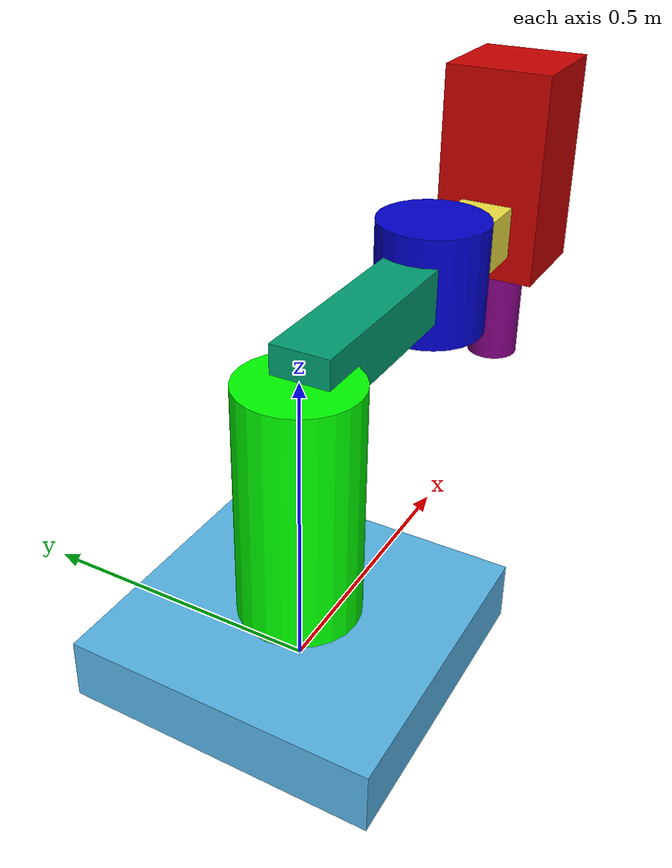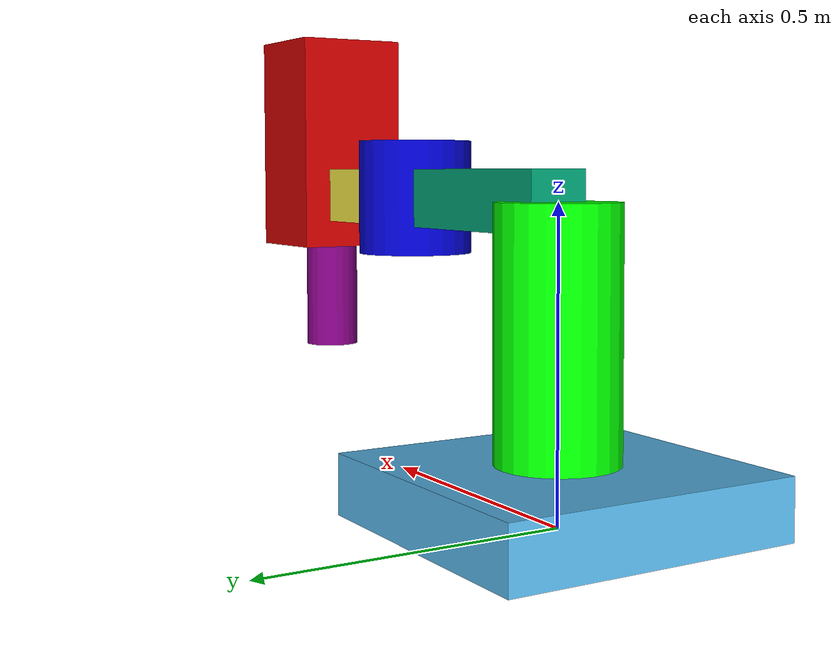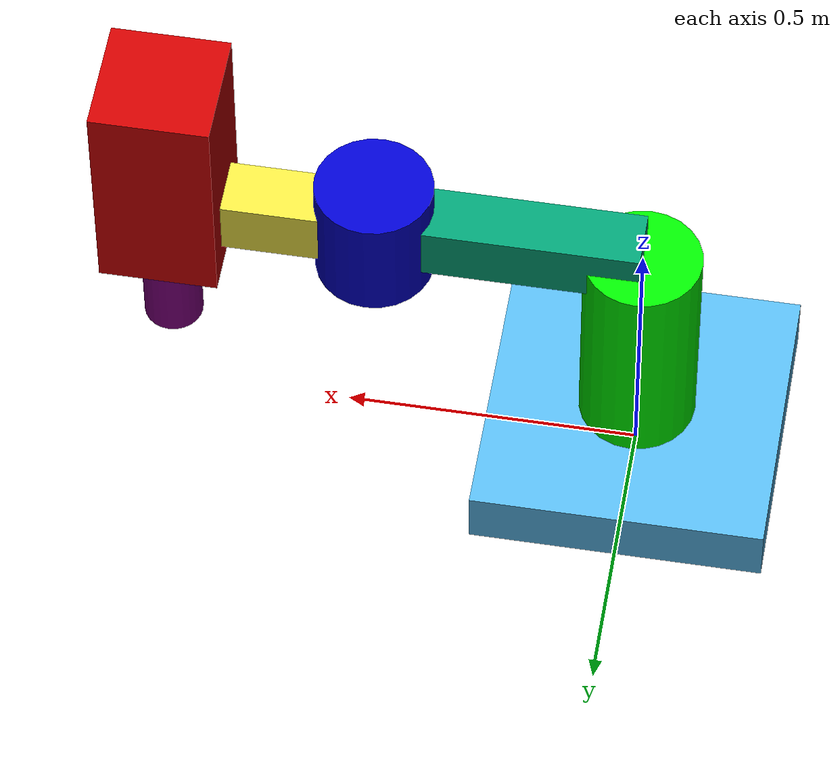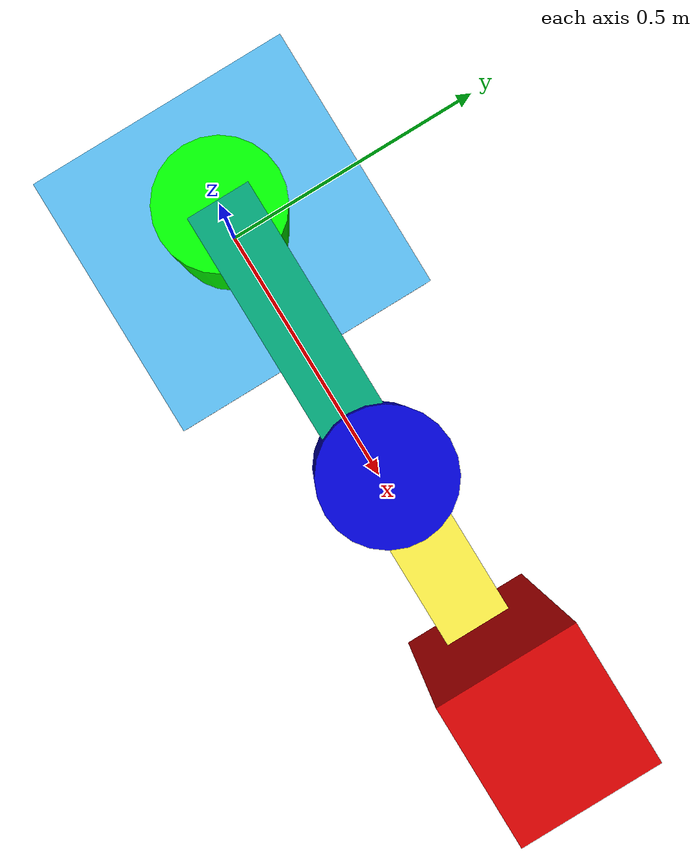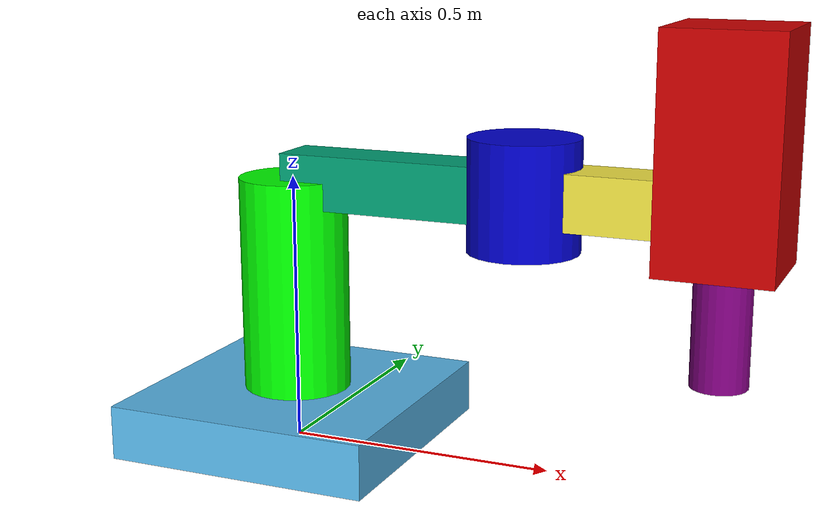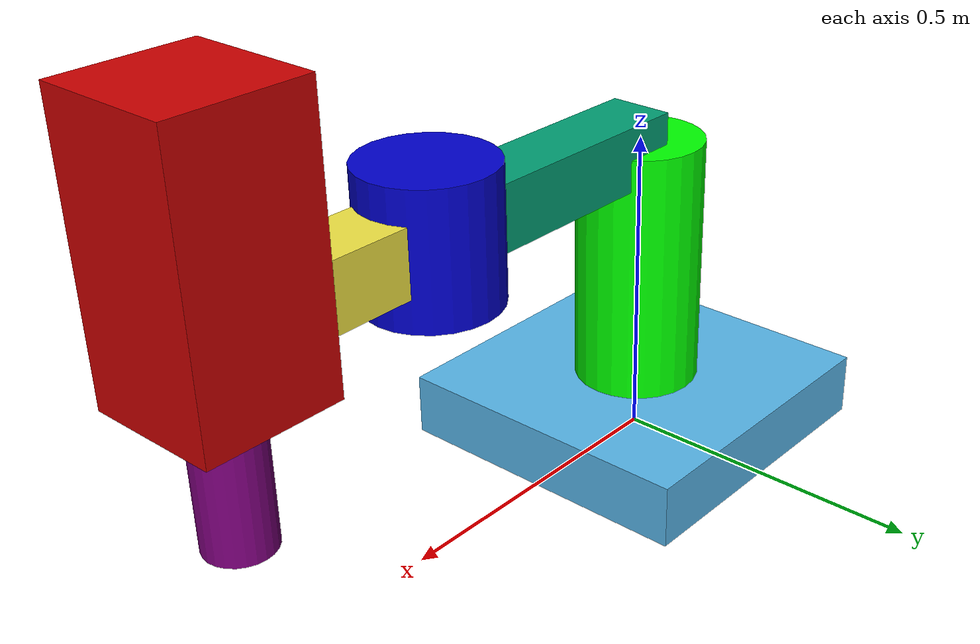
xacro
<?xml version="1.0"?>
<robot name="scara_robot" xmlns:xacro="http://www.ros.org/wiki/xacro">
    <xacro:arg name="control_mode" default="velocity" />

    <!-- Joint colors-->
    <material name="blue">
        <color rgba="0 0 0.8 1"/>
    </material>
    <material name="red">
        <color rgba="0.8 0 0 1"/>
    </material>
    <material name="green">
        <color rgba="0.0 1.0 0.0 1.0"/>
    </material>
    <material name="purple">
        <color rgba="0.5 0.0 0.5 1.0"/>
    </material>

    <!-- Robot dimensions -->
    <xacro:property name="d1" value=".5" />
    <xacro:property name="a1" value=".45" />
    <xacro:property name="a2" value=".35" />
    <xacro:property name="d3" value=".3" />

    <!-- EE cylinder measurement, radius and length -->
    <xacro:property name="ee_r" value=".05" />
    <xacro:property name="ee_l" value="${d3}" />

    <!-- Default revolute joint radius and length-->
    <xacro:property name="cyl_joint_r" value=".1" />
    <xacro:property name="cyl_joint_l" value=".2" />

    <!-- Default prismatic length of each side of a square -->
    <xacro:property name="prismatic_link_a" value=".2" />
    <!-- Default prismatic extention limit-->
    <xacro:property name="prismatic_extend_range" value=".2" />

    <!-- Default link arm width of a side of a square-->
    <xacro:property name="link_arm_a" value=".1" />

    <!--
            Model setup
    -->

    <!-- Base of the robot -->
    <xacro:property name="base_link_l" value=".5" />
    <xacro:property name="base_link_w" value=".5" />
    <xacro:property name="base_link_h" value="0.1" />
    <xacro:property name="base_link_mass" value="100" />

    <!-- Joint 1 -->
    <xacro:property name="joint1_lower" value="${-pi}" />
    <xacro:property name="joint1_upper" value="${pi}" />

    <!-- Joint 1 visual-->
    <xacro:property name="link1_l" value="${d1}" />
    <xacro:property name="link1_r" value="${cyl_joint_r}" />
    <xacro:property name="link1_mass" value="10" />

    <!-- DH data of joint 1-->
    <xacro:property name="link1_theta" value="0" />
    <xacro:property name="link1_d" value="0" />
    <xacro:property name="link1_a" value="0" />
    <xacro:property name="link1_alpha" value="0" />
    <!-- Joint 1 arm visual-->
    <xacro:property name="link1_arm_l" value="${a1}" />
    <xacro:property name="link1_arm_w" value="${link_arm_a}" />
    <xacro:property name="link1_arm_h" value="${link_arm_a}" />
    <xacro:property name="link1_arm_mass" value="5" />

    <!-- Joint 1 -->
    <xacro:property name="joint2_lower" value="${-2*pi/3}" />
    <xacro:property name="joint2_upper" value="${2*pi/3}" />

    <!-- Joint 2 visual-->
    <xacro:property name="link2_l" value="${cyl_joint_l}" />
    <xacro:property name="link2_r" value="${cyl_joint_r}" />
    <xacro:property name="link2_mass" value="5" />
    <!-- DH data of joint 2-->
    <xacro:property name="link2_theta" value="0" />
    <xacro:property name="link2_d" value="0" />
    <xacro:property name="link2_a" value="${a1}" />
    <xacro:property name="link2_alpha" value="0" />
    <!-- Joint 2 arm visual-->
    <xacro:property name="link2_arm_l" value="${a2}" />
    <xacro:property name="link2_arm_w" value="${link_arm_a}" />
    <xacro:property name="link2_arm_h" value="${link_arm_a}" />
    <xacro:property name="link2_arm_mass" value="5" />

    <!-- Joint 3 -->
    <!-- Prismatic extend limit -->
    <xacro:property name="joint3_lower" value="0" />
    <xacro:property name="joint3_upper" value="${prismatic_extend_range}" />

    <!-- Joint 3 visual-->
    <xacro:property name="link3_arm_l" value="${prismatic_link_a}" />
    <xacro:property name="link3_arm_w" value="${prismatic_link_a}" />
    <xacro:property name="link3_arm_h" value="${prismatic_link_a + prismatic_extend_range}" />
    <xacro:property name="link3_arm_mass" value="10" />

    <!-- DH data of joint 3-->
    <xacro:property name="link3_theta" value="0" />
    <xacro:property name="link3_d" value="0" />
    <xacro:property name="link3_a" value="${a2}" />
    <xacro:property name="link3_alpha" value="0" />

    <!-- EE 4 visual -->
    <xacro:property name="link4_l" value="${ee_l}" />
    <xacro:property name="link4_r" value="${ee_r}" />
    <xacro:property name="link4_mass" value="1" />
    <!-- DH data of joint 4 -->
    <xacro:property name="link4_theta" value="0" />
    <xacro:property name="link4_d" value="${-d3}" />
    <xacro:property name="link4_a" value="0" />
    <xacro:property name="link4_alpha" value="${pi}" />

    <!--
            Inertial template
    -->
    <xacro:macro name="inertial_box" params="mass x y z *origin">
        <inertial>
            <xacro:insert_block name="origin"/>
            <mass value="${mass}" />
            <inertia ixx="${(1/12) * mass * (y*y+z*z)}" ixy="0.0" ixz="0.0"
                    iyy="${(1/12) * mass * (x*x+z*z)}" iyz="0.0"
                    izz="${(1/12) * mass * (x*x+y*y)}" />
        </inertial>
    </xacro:macro>

    <xacro:macro name="inertial_cylinder" params="mass length radius *origin">
        <inertial>
            <xacro:insert_block name="origin"/>
            <mass value="${mass}" />
            <inertia ixx="${(1/12) * mass * (3*radius*radius + length*length)}" ixy="0.0" ixz="0.0"
                    iyy="${(1/12) * mass * (3*radius*radius + length*length)}" iyz="0.0"
                    izz="${(1/2) * mass * (radius*radius)}" />
        </inertial>
    </xacro:macro>

    <!--
            Modeling the robot
    -->

    <link name="world_link"/>

    <joint name="world_to_base" type="fixed">
    <parent link="world_link"/>
    <child link="base_link"/>
    <origin xyz="0 0 0" rpy="0 0 0"/>
    </joint>

    <link name="base_link">
        <visual>
            <origin rpy="0 0 0" xyz="0 0 ${base_link_h/2}" />
            <geometry>
                <box size="${base_link_l} ${base_link_w} ${base_link_h}" />
            </geometry>
        </visual>
        <collision>
            <origin rpy="0 0 0" xyz="0 0 ${base_link_h/2}" />
            <geometry>
                <box size="${base_link_l} ${base_link_w} ${base_link_h}" />
            </geometry>
        </collision>
        <xacro:inertial_box mass="${base_link_mass}" x="${base_link_l}" y="${base_link_w}" z="${base_link_h}">
            <origin rpy="0 0 0" xyz="0 0 ${base_link_h/2}" />
        </xacro:inertial_box>
    </link>

    <joint name="joint1" type="revolute">
        <parent link="base_link" />
        <child link="link1" />
        <origin rpy="0 0 0" xyz="0 0 ${link1_d}" />
        <axis xyz="0 0 1" />
        <limit lower="${joint1_lower}" upper="${joint1_upper}" effort="100" velocity="5.0" />
        <dynamics damping="0.1" friction="0"/>
    </joint>

    <link name="link1">
        <!-- Cylinder joint visual -->
        <visual>
            <origin rpy="0 0 0" xyz="0 0 ${link1_l/2}" />
            <geometry>
                <cylinder length="${link1_l}" radius="${link1_r}" />
            </geometry>
            <material name="green"/>
        </visual>
        <collision>
            <origin rpy="0 0 0" xyz="0 0 ${link1_l/2 + base_link_h/2}" />
            <geometry>
                <cylinder length="${link1_l - base_link_h}" radius="${link1_r}" />
            </geometry>
        </collision>
        <xacro:inertial_cylinder mass="${link1_mass}" length="${link1_l}" radius="${link1_r}">
            <origin rpy="0 0 0" xyz="0 0 ${link1_l/2}" />
        </xacro:inertial_cylinder>

        <!-- Arm visual -->
        <visual>
            <origin rpy="0 0 0" xyz="${link1_arm_l/2} 0 ${link1_l}" />
            <geometry>
                <box size="${link1_arm_l} ${link1_arm_w} ${link1_arm_h}" />
            </geometry>
        </visual>
        <collision>
            <origin rpy="0 0 0" xyz="${link1_arm_l/2} 0 ${link1_l}" />
            <geometry>
                <box size="${link1_arm_l - cyl_joint_r * 2} ${link1_arm_w} ${link1_arm_h}" />
            </geometry>
        </collision>
        <xacro:inertial_box mass="${link1_arm_mass}" x="${link1_arm_l}" y="${link1_arm_w}" z="${link1_arm_h}">
            <origin rpy="0 0 0" xyz="${link1_arm_l/2} 0 0" />
        </xacro:inertial_box>
    </link>

    <link name="link2">

        <!-- Cylinder joint  visual -->
        <visual>
            <origin rpy="0 0 0" xyz="0 0 0" />
            <geometry>
                <cylinder length="${link2_l}" radius="${link2_r}" />
            </geometry>
            <material name="blue"/>
        </visual>
        <collision>
            <origin rpy="0 0 0" xyz="0 0 0" />
            <geometry>
                <cylinder length="${link2_l}" radius="${link2_r}" />
            </geometry>
        </collision>
        <xacro:inertial_cylinder mass="${link2_mass}" length="${link2_l}" radius="${link2_r}">
            <origin rpy="0 0 0" xyz="0 0 0" />
        </xacro:inertial_cylinder>

        <!-- Arm visual -->
        <visual>
            <origin rpy="0 0 0" xyz="${link2_arm_l/2} 0 0" />
            <geometry>
                <box size="${link2_arm_l} ${link2_arm_w} ${link2_arm_h}" />
            </geometry>
        </visual>
        <collision>
            <origin rpy="0 0 0" xyz="${link2_arm_l/2} 0 0" />
            <geometry>
                <box size="${link2_arm_l - prismatic_link_a} ${link2_arm_w} ${link2_arm_h}" />
            </geometry>
        </collision>
        <xacro:inertial_box mass="${link2_arm_mass}" x="${link2_arm_l}" y="${link2_arm_w}" z="${link2_arm_h}">
            <origin rpy="0 0 0" xyz="${link2_arm_l/2} 0 0" />
        </xacro:inertial_box>
    </link>

    <joint name="joint2" type="revolute">
        <parent link="link1" />
        <child link="link2" />
        <origin rpy="0 0 0" xyz="${a1} 0 ${d1}" />
        <limit lower="${joint2_lower}" upper="${joint2_upper}" effort="100" velocity="1.0" />
        <axis xyz="0 0 1" />
        <dynamics damping="1" friction="0"/>
    </joint>

    <link name="link3">
        <!-- Prismatic joint visual -->
        <visual>
            <origin rpy="0 0 0" xyz="0 0 ${link3_arm_h/2 - prismatic_link_a/2}" />
            <geometry>
                <box size="${link3_arm_l} ${link3_arm_w} ${link3_arm_h}" />
            </geometry>
            <material name="red"/>
        </visual>
        <collision>
            <origin rpy="0 0 0" xyz="0 0 ${link3_arm_h/2 - prismatic_link_a/2}" />
            <geometry>
                <box size="${link3_arm_l} ${link3_arm_w} ${link3_arm_h}" />
            </geometry>
        </collision>
        <xacro:inertial_box mass="${link3_arm_mass}" x="${link3_arm_l}" y="${link3_arm_w}" z="${link3_arm_h}">
            <origin rpy="0 0 0" xyz="0 0 ${link3_arm_h/2 - prismatic_link_a/2}" />
        </xacro:inertial_box>
    </link>

    <joint name="joint3" type="prismatic">
        <parent link="link2" />
        <child link="link3" />
        <origin rpy="0 0 0" xyz="${link3_a} 0 0" />
        <axis xyz="0 0 -1" />
        <limit lower="${joint3_lower}" upper="${joint3_upper}" effort="1000" velocity="5" />
        <dynamics damping="1" friction="0"/>
    </joint>

    <link name="link4">

        <!-- Cylinder visual -->
        <visual>
            <origin rpy="0 0 0" xyz="0 0 ${-link4_l/2}" />
            <geometry>
                <cylinder length="${link4_l}" radius="${link4_r}" />
            </geometry>
            <material name="purple"/>
        </visual>
        <collision>
            <origin rpy="0 0 0" xyz="0 0 ${-(link4_l - prismatic_link_a/2)/2}" />
            <geometry>
                <cylinder length="${link4_l - prismatic_link_a/2}" radius="${link4_r}" />
            </geometry>
        </collision>
        <xacro:inertial_cylinder mass="${link4_mass}" length="${link4_l}" radius="${link4_r}">
            <origin rpy="0 0 0" xyz="0 0 ${-link4_l/2}" />
        </xacro:inertial_cylinder>
    </link>

    <joint name="joint4" type="fixed">
        <parent link="link3" />
        <child link="link4" />
        <origin rpy="${link4_alpha} 0 ${link4_theta}" xyz="0 0 ${link4_d}" />
        <axis xyz="0 0 1" />
    </joint>

    <!--
            Gazebo configuration
     -->

    <!--
        Use for GUI control,
        comment out for control via ros2 trajectory
    -->
    <gazebo>

    </gazebo>

    <!-- Set joint4 to publish, it is fixed joint which will not publish by default-->

    <gazebo>

    </gazebo>

    <gazebo>
        <plugin
            filename="gz-sim-joint-state-publisher-system"
            name="gz::sim::systems::JointStatePublisher">
            <topic>/joint_states</topic>
        </plugin>

        <!-- Force controllers -->
        <xacro:if value="${'$(arg control_mode)' == 'force'}">

            <plugin
                filename="gz-sim-apply-joint-force-system"
                name="gz::sim::systems::ApplyJointForce">
                <joint_name>joint1</joint_name>
            </plugin>
            <plugin
                filename="gz-sim-apply-joint-force-system"
                name="gz::sim::systems::ApplyJointForce">
                <joint_name>joint2</joint_name>
            </plugin>
            <plugin
                filename="gz-sim-apply-joint-force-system"
                name="gz::sim::systems::ApplyJointForce">
                <joint_name>joint3</joint_name>
        </plugin>

        </xacro:if>

        <!-- Velocity controllers -->
        <xacro:if value="${'$(arg control_mode)' == 'velocity'}">
            <plugin
                filename="gz-sim-joint-controller-system"
                name="gz::sim::systems::JointController">
                <joint_name>joint1</joint_name>
                <initial_velocity>0.0</initial_velocity>
            </plugin>

            <plugin
                filename="gz-sim-joint-controller-system"
                name="gz::sim::systems::JointController">
                <joint_name>joint2</joint_name>
                <initial_velocity>0.0</initial_velocity>
            </plugin>

            <plugin
                filename="gz-sim-joint-controller-system"
                name="gz::sim::systems::JointController">
                <joint_name>joint3</joint_name>
                <initial_velocity>0.0</initial_velocity>
            </plugin>

        </xacro:if>
        <plugin
            filename="gz-sim-pose-publisher-system"
            name="gz::sim::systems::PosePublisher">
            <publish_link_pose>true</publish_link_pose>
            <publish_model_pose>true</publish_model_pose>
            <publish_sensor_pose>false</publish_sensor_pose>
            <publish_collision_pose>false</publish_collision_pose>
            <publish_visual_pose>false</publish_visual_pose>
            <publish_nested_model_pose>false</publish_nested_model_pose>
            <use_pose_vector_msg>true</use_pose_vector_msg>
        </plugin>
    </gazebo>
</robot>
